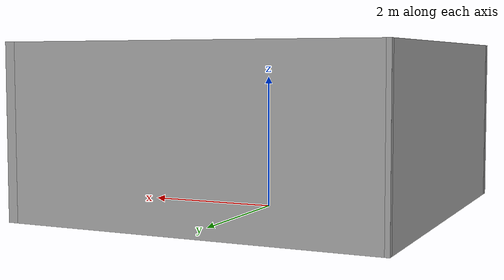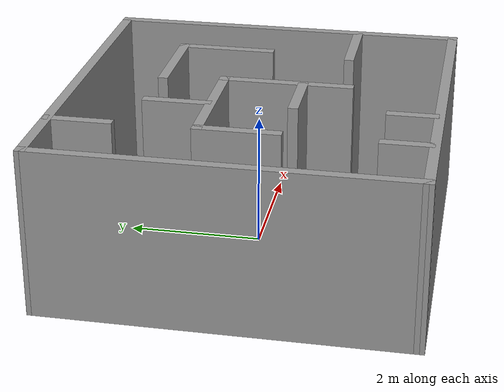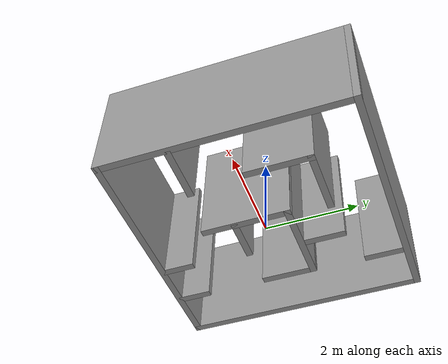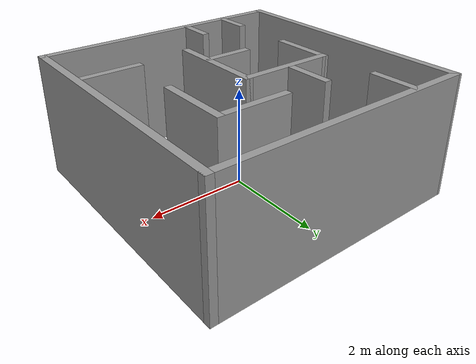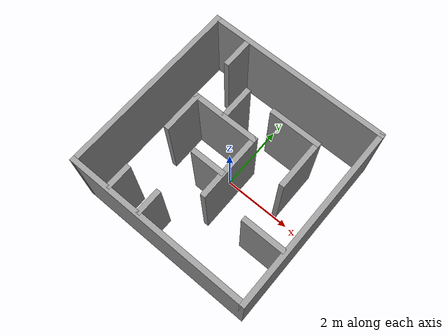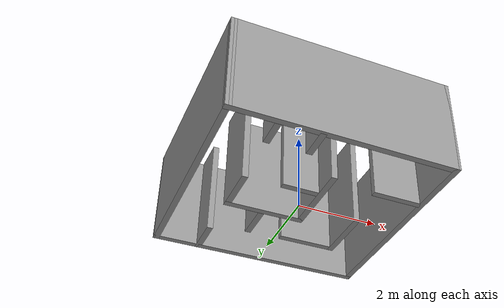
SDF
<?xml version='1.0'?>
<sdf version='1.7'>
  <model name='placed'>
    <pose>-0.044833 0.018655 0 0 -0 0</pose>
    <link name='Wall_0'>
      <collision name='Wall_0_Collision'>
        <geometry>
          <box>
            <size>5.5 0.15 2.5</size>
          </box>
        </geometry>
        <pose>0 0 1.25 0 -0 0</pose>
      </collision>
      <visual name='Wall_0_Visual'>
        <pose>0 0 1.25 0 -0 0</pose>
        <geometry>
          <box>
            <size>5.5 0.15 2.5</size>
          </box>
        </geometry>
        <material>
          <script>
            <uri>file://media/materials/scripts/gazebo.material</uri>
            <name>Gazebo/Grey</name>
          </script>
          <ambient>1 1 1 1</ambient>
        </material>
        <meta>
          <layer>0</layer>
        </meta>
      </visual>
      <pose>-2.66334 -0 0 0 -0 -1.57509</pose>
    </link>
    <link name='Wall_10'>
      <collision name='Wall_10_Collision'>
        <geometry>
          <box>
            <size>1.25 0.15 2.5</size>
          </box>
        </geometry>
        <pose>0 0 1.25 0 -0 0</pose>
      </collision>
      <visual name='Wall_10_Visual'>
        <pose>0 0 1.25 0 -0 0</pose>
        <geometry>
          <box>
            <size>1.25 0.15 2.5</size>
          </box>
        </geometry>
        <material>
          <script>
            <uri>file://media/materials/scripts/gazebo.material</uri>
            <name>Gazebo/Grey</name>
          </script>
          <ambient>1 1 1 1</ambient>
        </material>
        <meta>
          <layer>0</layer>
        </meta>
      </visual>
      <pose>-1.52484 0.005 0 0 -0 1.5708</pose>
    </link>
    <link name='Wall_11'>
      <collision name='Wall_11_Collision'>
        <geometry>
          <box>
            <size>2 0.15 2.5</size>
          </box>
        </geometry>
        <pose>0 0 1.25 0 -0 0</pose>
      </collision>
      <visual name='Wall_11_Visual'>
        <pose>0 0 1.25 0 -0 0</pose>
        <geometry>
          <box>
            <size>2 0.15 2.5</size>
          </box>
        </geometry>
        <material>
          <script>
            <uri>file://media/materials/scripts/gazebo.material</uri>
            <name>Gazebo/Grey</name>
          </script>
          <ambient>1 1 1 1</ambient>
        </material>
        <meta>
          <layer>0</layer>
        </meta>
      </visual>
      <pose>-0.599839 0.555 0 0 -0 0</pose>
    </link>
    <link name='Wall_12'>
      <collision name='Wall_12_Collision'>
        <geometry>
          <box>
            <size>2 0.15 2.5</size>
          </box>
        </geometry>
        <pose>0 0 1.25 0 -0 0</pose>
      </collision>
      <visual name='Wall_12_Visual'>
        <pose>0 0 1.25 0 -0 0</pose>
        <geometry>
          <box>
            <size>2 0.15 2.5</size>
          </box>
        </geometry>
        <material>
          <script>
            <uri>file://media/materials/scripts/gazebo.material</uri>
            <name>Gazebo/Grey</name>
          </script>
          <ambient>1 1 1 1</ambient>
        </material>
        <meta>
          <layer>0</layer>
        </meta>
      </visual>
      <pose>0.325161 -0.37 0 0 -0 -1.5708</pose>
    </link>
    <link name='Wall_14'>
      <collision name='Wall_14_Collision'>
        <geometry>
          <box>
            <size>0.75 0.15 2.5</size>
          </box>
        </geometry>
        <pose>0 0 1.25 0 -0 0</pose>
      </collision>
      <visual name='Wall_14_Visual'>
        <pose>0 0 1.25 0 -0 0</pose>
        <geometry>
          <box>
            <size>0.75 0.15 2.5</size>
          </box>
        </geometry>
        <material>
          <script>
            <uri>file://media/materials/scripts/gazebo.material</uri>
            <name>Gazebo/Grey</name>
          </script>
          <ambient>1 1 1 1</ambient>
        </material>
        <meta>
          <layer>0</layer>
        </meta>
      </visual>
      <pose>-1.54784 -2.3035 0 0 -0 1.5708</pose>
    </link>
    <link name='Wall_16'>
      <collision name='Wall_16_Collision'>
        <geometry>
          <box>
            <size>0.75 0.15 2.5</size>
          </box>
        </geometry>
        <pose>0 0 1.25 0 -0 0</pose>
      </collision>
      <visual name='Wall_16_Visual'>
        <pose>0 0 1.25 0 -0 0</pose>
        <geometry>
          <box>
            <size>0.75 0.15 2.5</size>
          </box>
        </geometry>
        <material>
          <script>
            <uri>file://media/materials/scripts/gazebo.material</uri>
            <name>Gazebo/Grey</name>
          </script>
          <ambient>1 1 1 1</ambient>
        </material>
        <meta>
          <layer>0</layer>
        </meta>
      </visual>
      <pose>-0.558839 -2.3035 0 0 -0 1.5708</pose>
    </link>
    <link name='Wall_18'>
      <collision name='Wall_18_Collision'>
        <geometry>
          <box>
            <size>1.25 0.15 2.5</size>
          </box>
        </geometry>
        <pose>0 0 1.25 0 -0 0</pose>
      </collision>
      <visual name='Wall_18_Visual'>
        <pose>0 0 1.25 0 -0 0</pose>
        <geometry>
          <box>
            <size>1.25 0.15 2.5</size>
          </box>
        </geometry>
        <material>
          <script>
            <uri>file://media/materials/scripts/gazebo.material</uri>
            <name>Gazebo/Grey</name>
          </script>
          <ambient>1 1 1 1</ambient>
        </material>
        <meta>
          <layer>0</layer>
        </meta>
      </visual>
      <pose>2.03066 -1.166 0 0 -0 3.14159</pose>
    </link>
    <link name='Wall_23'>
      <collision name='Wall_23_Collision'>
        <geometry>
          <box>
            <size>1.5 0.15 2.5</size>
          </box>
        </geometry>
        <pose>0 0 1.25 0 -0 0</pose>
      </collision>
      <visual name='Wall_23_Visual'>
        <pose>0 0 1.25 0 -0 0</pose>
        <geometry>
          <box>
            <size>1.5 0.15 2.5</size>
          </box>
        </geometry>
        <material>
          <script>
            <uri>file://media/materials/scripts/gazebo.material</uri>
            <name>Gazebo/Grey</name>
          </script>
          <ambient>1 1 1 1</ambient>
        </material>
        <meta>
          <layer>0</layer>
        </meta>
      </visual>
      <pose>0.924739 1.45922 0 0 -0 0</pose>
    </link>
    <link name='Wall_24'>
      <collision name='Wall_24_Collision'>
        <geometry>
          <box>
            <size>1.5 0.15 2.5</size>
          </box>
        </geometry>
        <pose>0 0 1.25 0 -0 0</pose>
      </collision>
      <visual name='Wall_24_Visual'>
        <pose>0 0 1.25 0 -0 0</pose>
        <geometry>
          <box>
            <size>1.5 0.15 2.5</size>
          </box>
        </geometry>
        <material>
          <script>
            <uri>file://media/materials/scripts/gazebo.material</uri>
            <name>Gazebo/Grey</name>
          </script>
          <ambient>1 1 1 1</ambient>
        </material>
        <meta>
          <layer>0</layer>
        </meta>
      </visual>
      <pose>1.59974 0.784217 0 0 -0 -1.5708</pose>
    </link>
    <link name='Wall_26'>
      <collision name='Wall_26_Collision'>
        <geometry>
          <box>
            <size>1 0.15 2.5</size>
          </box>
        </geometry>
        <pose>0 0 1.25 0 -0 0</pose>
      </collision>
      <visual name='Wall_26_Visual'>
        <pose>0 0 1.25 0 -0 0</pose>
        <geometry>
          <box>
            <size>1 0.15 2.5</size>
          </box>
        </geometry>
        <material>
          <script>
            <uri>file://media/materials/scripts/gazebo.material</uri>
            <name>Gazebo/Grey</name>
          </script>
          <ambient>1 1 1 1</ambient>
        </material>
        <meta>
          <layer>0</layer>
        </meta>
      </visual>
      <pose>-0.144844 -0.624382 0 0 -0 3.14159</pose>
    </link>
    <link name='Wall_28'>
      <collision name='Wall_28_Collision'>
        <geometry>
          <box>
            <size>1 0.15 2.5</size>
          </box>
        </geometry>
        <pose>0 0 1.25 0 -0 0</pose>
      </collision>
      <visual name='Wall_28_Visual'>
        <pose>0 0 1.25 0 -0 0</pose>
        <geometry>
          <box>
            <size>1 0.15 2.5</size>
          </box>
        </geometry>
        <material>
          <script>
            <uri>file://media/materials/scripts/gazebo.material</uri>
            <name>Gazebo/Grey</name>
          </script>
          <ambient>1 1 1 1</ambient>
        </material>
        <meta>
          <layer>0</layer>
        </meta>
      </visual>
      <pose>-0.647578 1.04774 0 0 -0 1.5708</pose>
    </link>
    <link name='Wall_30'>
      <collision name='Wall_30_Collision'>
        <geometry>
          <box>
            <size>1 0.15 2.5</size>
          </box>
        </geometry>
        <pose>0 0 1.25 0 -0 0</pose>
      </collision>
      <visual name='Wall_30_Visual'>
        <pose>0 0 1.25 0 -0 0</pose>
        <geometry>
          <box>
            <size>1 0.15 2.5</size>
          </box>
        </geometry>
        <material>
          <script>
            <uri>file://media/materials/scripts/gazebo.material</uri>
            <name>Gazebo/Grey</name>
          </script>
          <ambient>1 1 1 1</ambient>
        </material>
        <meta>
          <layer>0</layer>
        </meta>
      </visual>
      <pose>-1.5601 2.23571 0 0 -0 -1.5708</pose>
    </link>
    <link name='Wall_6'>
      <collision name='Wall_6_Collision'>
        <geometry>
          <box>
            <size>5.5 0.15 2.5</size>
          </box>
        </geometry>
        <pose>0 0 1.25 0 -0 0</pose>
      </collision>
      <visual name='Wall_6_Visual'>
        <pose>0 0 1.25 0 -0 0</pose>
        <geometry>
          <box>
            <size>5.5 0.15 2.5</size>
          </box>
        </geometry>
        <material>
          <script>
            <uri>file://media/materials/scripts/gazebo.material</uri>
            <name>Gazebo/Grey</name>
          </script>
          <ambient>1 1 1 1</ambient>
        </material>
        <meta>
          <layer>0</layer>
        </meta>
      </visual>
      <pose>0.000161 -2.675 0 0 -0 0</pose>
    </link>
    <link name='Wall_7'>
      <collision name='Wall_7_Collision'>
        <geometry>
          <box>
            <size>5.5 0.15 2.5</size>
          </box>
        </geometry>
        <pose>0 0 1.25 0 -0 0</pose>
      </collision>
      <visual name='Wall_7_Visual'>
        <pose>0 0 1.25 0 -0 0</pose>
        <geometry>
          <box>
            <size>5.5 0.15 2.5</size>
          </box>
        </geometry>
        <material>
          <script>
            <uri>file://media/materials/scripts/gazebo.material</uri>
            <name>Gazebo/Grey</name>
          </script>
          <ambient>1 1 1 1</ambient>
        </material>
        <meta>
          <layer>0</layer>
        </meta>
      </visual>
      <pose>2.67516 -0 0 0 -0 1.5708</pose>
    </link>
    <link name='Wall_8'>
      <collision name='Wall_8_Collision'>
        <geometry>
          <box>
            <size>5.477 0.15 2.5</size>
          </box>
        </geometry>
        <pose>0 0 1.25 0 -0 0</pose>
      </collision>
      <visual name='Wall_8_Visual'>
        <pose>0 0 1.25 0 -0 0</pose>
        <geometry>
          <box>
            <size>5.477 0.15 2.5</size>
          </box>
        </geometry>
        <material>
          <script>
            <uri>file://media/materials/scripts/gazebo.material</uri>
            <name>Gazebo/Grey</name>
          </script>
          <ambient>1 1 1 1</ambient>
        </material>
        <meta>
          <layer>0</layer>
        </meta>
      </visual>
      <pose>0.011661 2.675 0 0 -0 3.14159</pose>
    </link>
    <static>1</static>
  </model>
</sdf>
